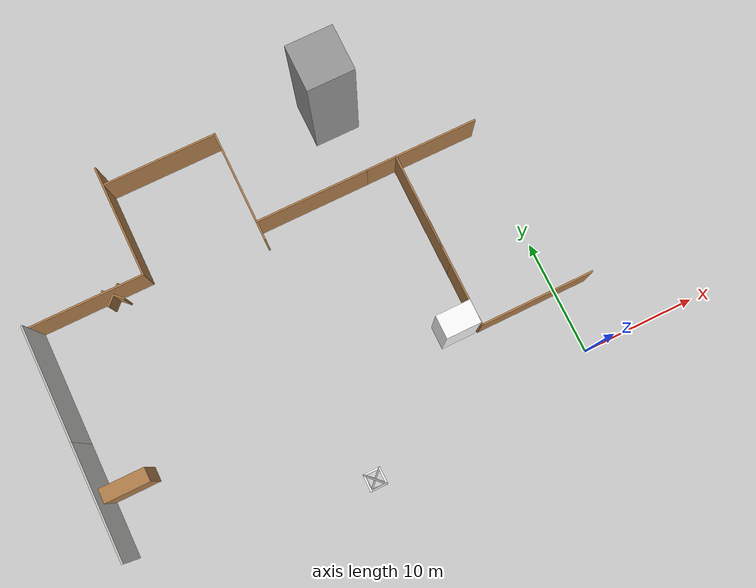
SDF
<sdf version="1.7">
 <world name="default">
  <model name="ground_plane">
   <static>1</static>
   <link name="link">
    <collision name="collision">
     <geometry><plane><normal>0 0 1</normal><size>100 100</size></plane></geometry>
     <surface>
      <contact><collide_bitmask>65535</collide_bitmask></contact>
      <friction><ode><mu>100</mu><mu2>50</mu2></ode></friction>
     </surface>
    </collision>
    <visual name="visual">
     <cast_shadows>0</cast_shadows>
     <geometry><plane><normal>0 0 1</normal><size>100 100</size></plane></geometry>
     <material>
      <script><uri>file://media/materials/scripts/gazebo.material</uri><name>Gazebo/Grey</name></script>
     </material>
    </visual>
   </link>
  </model>
  <model name="Untitled_clone">
   <link name="Wall_0">
    <pose>-0.8775 -4.2975 0 0 -0 0</pose>
    <inertial>
     <mass>1</mass>
     <inertia><ixx>1</ixx><ixy>0</ixy><ixz>0</ixz><iyy>1</iyy><iyz>0</iyz><izz>1</izz></inertia>
    </inertial>
    <visual name="Wall_0_Visual">
     <pose>0 0 1.9 0 -0 0</pose>
     <geometry><box><size>10 0.15 3.8</size></box></geometry>
     <material>
      <script><uri>file://media/materials/scripts/gazebo.material</uri><name>Gazebo/Wood</name></script>
      <ambient>1 1 1 1</ambient>
      <shader type="pixel"><normal_map>__default__</normal_map></shader>
      <diffuse>1 1 1 1</diffuse>
      <specular>0.2 0.2 0.2 1</specular>
      <emissive>0 0 0 1</emissive>
     </material>
     <meta><layer>0</layer></meta>
    </visual>
    <collision name="Wall_0_Collision">
     <pose>0 0 1.9 0 -0 0</pose>
     <geometry><box><size>10 0.15 3.8</size></box></geometry>
     <surface>
      <friction>
       <ode><mu>1</mu><mu2>1</mu2><fdir1>0 0 0</fdir1><slip1>0</slip1><slip2>0</slip2></ode>
       <torsional>
        <coefficient>1</coefficient>
        <patch_radius>0</patch_radius>
        <surface_radius>0</surface_radius>
        <use_patch_radius>1</use_patch_radius>
        <ode><slip>0</slip></ode>
       </torsional>
      </friction>
      <bounce><restitution_coefficient>0</restitution_coefficient><threshold>1e+06</threshold></bounce>
      <contact>
       <collide_without_contact>0</collide_without_contact>
       <collide_without_contact_bitmask>1</collide_without_contact_bitmask>
       <collide_bitmask>1</collide_bitmask>
       <ode>
        <soft_cfm>0</soft_cfm>
        <soft_erp>0.2</soft_erp>
        <kp>1e+13</kp>
        <kd>1</kd>
        <max_vel>0.01</max_vel>
        <min_depth>0</min_depth>
       </ode>
       <bullet>
        <split_impulse>1</split_impulse>
        <split_impulse_penetration_threshold>-0.01</split_impulse_penetration_threshold>
        <soft_cfm>0</soft_cfm>
        <soft_erp>0.2</soft_erp>
        <kp>1e+13</kp>
        <kd>1</kd>
       </bullet>
      </contact>
     </surface>
    </collision>
   </link>
   <static>1</static>
   <pose>-4.14648 25.1875 0 0 -0 0</pose>
  </model>
  <model name="Untitled_clone_clone">
   <link name="Wall_0">
    <pose>-0.8775 -4.2975 0 0 -0 0</pose>
    <inertial>
     <mass>1</mass>
     <inertia><ixx>1</ixx><ixy>0</ixy><ixz>0</ixz><iyy>1</iyy><iyz>0</iyz><izz>1</izz></inertia>
    </inertial>
    <visual name="Wall_0_Visual">
     <pose>0 0 1.9 0 -0 0</pose>
     <geometry><box><size>10 0.15 3.8</size></box></geometry>
     <material>
      <script><uri>file://media/materials/scripts/gazebo.material</uri><name>Gazebo/Wood</name></script>
      <ambient>1 1 1 1</ambient>
      <shader type="pixel"><normal_map>__default__</normal_map></shader>
      <diffuse>1 1 1 1</diffuse>
      <specular>0.2 0.2 0.2 1</specular>
      <emissive>0 0 0 1</emissive>
     </material>
     <meta><layer>0</layer></meta>
    </visual>
    <collision name="Wall_0_Collision">
     <pose>0 0 1.9 0 -0 0</pose>
     <geometry><box><size>10 0.15 3.8</size></box></geometry>
     <surface>
      <friction>
       <ode><mu>1</mu><mu2>1</mu2><fdir1>0 0 0</fdir1><slip1>0</slip1><slip2>0</slip2></ode>
       <torsional>
        <coefficient>1</coefficient>
        <patch_radius>0</patch_radius>
        <surface_radius>0</surface_radius>
        <use_patch_radius>1</use_patch_radius>
        <ode><slip>0</slip></ode>
       </torsional>
      </friction>
      <bounce><restitution_coefficient>0</restitution_coefficient><threshold>1e+06</threshold></bounce>
      <contact>
       <collide_without_contact>0</collide_without_contact>
       <collide_without_contact_bitmask>1</collide_without_contact_bitmask>
       <collide_bitmask>1</collide_bitmask>
       <ode>
        <soft_cfm>0</soft_cfm>
        <soft_erp>0.2</soft_erp>
        <kp>1e+13</kp>
        <kd>1</kd>
        <max_vel>0.01</max_vel>
        <min_depth>0</min_depth>
       </ode>
       <bullet>
        <split_impulse>1</split_impulse>
        <split_impulse_penetration_threshold>-0.01</split_impulse_penetration_threshold>
        <soft_cfm>0</soft_cfm>
        <soft_erp>0.2</soft_erp>
        <kp>1e+13</kp>
        <kd>1</kd>
       </bullet>
      </contact>
     </surface>
    </collision>
   </link>
   <static>1</static>
   <pose>-14.1014 25.1819 0 0 -0 0</pose>
  </model>
  <model name="Untitled_clone_clone_0">
   <link name="Wall_0">
    <pose>-0.8775 -4.2975 0 0 -0 0</pose>
    <inertial>
     <mass>1</mass>
     <inertia><ixx>1</ixx><ixy>0</ixy><ixz>0</ixz><iyy>1</iyy><iyz>0</iyz><izz>1</izz></inertia>
    </inertial>
    <visual name="Wall_0_Visual">
     <pose>0 0 1.9 0 -0 0</pose>
     <geometry><box><size>10 0.15 3.8</size></box></geometry>
     <material>
      <script><uri>file://media/materials/scripts/gazebo.material</uri><name>Gazebo/Wood</name></script>
      <ambient>1 1 1 1</ambient>
      <shader type="pixel"><normal_map>__default__</normal_map></shader>
      <diffuse>1 1 1 1</diffuse>
      <specular>0.2 0.2 0.2 1</specular>
      <emissive>0 0 0 1</emissive>
     </material>
     <meta><layer>0</layer></meta>
    </visual>
    <collision name="Wall_0_Collision">
     <pose>0 0 1.9 0 -0 0</pose>
     <geometry><box><size>10 0.15 3.8</size></box></geometry>
     <surface>
      <friction>
       <ode><mu>1</mu><mu2>1</mu2><fdir1>0 0 0</fdir1><slip1>0</slip1><slip2>0</slip2></ode>
       <torsional>
        <coefficient>1</coefficient>
        <patch_radius>0</patch_radius>
        <surface_radius>0</surface_radius>
        <use_patch_radius>1</use_patch_radius>
        <ode><slip>0</slip></ode>
       </torsional>
      </friction>
      <bounce><restitution_coefficient>0</restitution_coefficient><threshold>1e+06</threshold></bounce>
      <contact>
       <collide_without_contact>0</collide_without_contact>
       <collide_without_contact_bitmask>1</collide_without_contact_bitmask>
       <collide_bitmask>1</collide_bitmask>
       <ode>
        <soft_cfm>0</soft_cfm>
        <soft_erp>0.2</soft_erp>
        <kp>1e+13</kp>
        <kd>1</kd>
        <max_vel>0.01</max_vel>
        <min_depth>0</min_depth>
       </ode>
       <bullet>
        <split_impulse>1</split_impulse>
        <split_impulse_penetration_threshold>-0.01</split_impulse_penetration_threshold>
        <soft_cfm>0</soft_cfm>
        <soft_erp>0.2</soft_erp>
        <kp>1e+13</kp>
        <kd>1</kd>
       </bullet>
      </contact>
     </surface>
    </collision>
   </link>
   <static>1</static>
   <pose>-24.2081 25.1073 0 0 -0 1.5708</pose>
  </model>
  <model name="Untitled_clone_clone_1">
   <link name="Wall_0">
    <pose>-0.8775 -4.2975 0 0 -0 0</pose>
    <inertial>
     <mass>1</mass>
     <inertia><ixx>1</ixx><ixy>0</ixy><ixz>0</ixz><iyy>1</iyy><iyz>0</iyz><izz>1</izz></inertia>
    </inertial>
    <visual name="Wall_0_Visual">
     <pose>0 0 1.9 0 -0 0</pose>
     <geometry><box><size>10 0.15 3.8</size></box></geometry>
     <material>
      <script><uri>file://media/materials/scripts/gazebo.material</uri><name>Gazebo/Wood</name></script>
      <ambient>1 1 1 1</ambient>
      <shader type="pixel"><normal_map>__default__</normal_map></shader>
      <diffuse>1 1 1 1</diffuse>
      <specular>0.2 0.2 0.2 1</specular>
      <emissive>0 0 0 1</emissive>
     </material>
     <meta><layer>0</layer></meta>
    </visual>
    <collision name="Wall_0_Collision">
     <pose>0 0 1.9 0 -0 0</pose>
     <geometry><box><size>10 0.15 3.8</size></box></geometry>
     <surface>
      <friction>
       <ode><mu>1</mu><mu2>1</mu2><fdir1>0 0 0</fdir1><slip1>0</slip1><slip2>0</slip2></ode>
       <torsional>
        <coefficient>1</coefficient>
        <patch_radius>0</patch_radius>
        <surface_radius>0</surface_radius>
        <use_patch_radius>1</use_patch_radius>
        <ode><slip>0</slip></ode>
       </torsional>
      </friction>
      <bounce><restitution_coefficient>0</restitution_coefficient><threshold>1e+06</threshold></bounce>
      <contact>
       <collide_without_contact>0</collide_without_contact>
       <collide_without_contact_bitmask>1</collide_without_contact_bitmask>
       <collide_bitmask>1</collide_bitmask>
       <ode>
        <soft_cfm>0</soft_cfm>
        <soft_erp>0.2</soft_erp>
        <kp>1e+13</kp>
        <kd>1</kd>
        <max_vel>0.01</max_vel>
        <min_depth>0</min_depth>
       </ode>
       <bullet>
        <split_impulse>1</split_impulse>
        <split_impulse_penetration_threshold>-0.01</split_impulse_penetration_threshold>
        <soft_cfm>0</soft_cfm>
        <soft_erp>0.2</soft_erp>
        <kp>1e+13</kp>
        <kd>1</kd>
       </bullet>
      </contact>
     </surface>
    </collision>
   </link>
   <static>1</static>
   <pose>-34.0103 25.18 0 0 -0 0</pose>
  </model>
  <model name="Untitled_clone_clone_0_clone_clone">
   <link name="Wall_0">
    <pose>-0.8775 -4.2975 0 0 -0 0</pose>
    <inertial>
     <mass>1</mass>
     <inertia><ixx>1</ixx><ixy>0</ixy><ixz>0</ixz><iyy>1</iyy><iyz>0</iyz><izz>1</izz></inertia>
    </inertial>
    <visual name="Wall_0_Visual">
     <pose>0 0 1.9 0 -0 0</pose>
     <geometry><box><size>10 0.15 3.8</size></box></geometry>
     <material>
      <script><uri>file://media/materials/scripts/gazebo.material</uri><name>Gazebo/Wood</name></script>
      <ambient>1 1 1 1</ambient>
      <shader type="pixel"><normal_map>__default__</normal_map></shader>
      <diffuse>1 1 1 1</diffuse>
      <specular>0.2 0.2 0.2 1</specular>
      <emissive>0 0 0 1</emissive>
     </material>
     <meta><layer>0</layer></meta>
    </visual>
    <collision name="Wall_0_Collision">
     <pose>0 0 1.9 0 -0 0</pose>
     <geometry><box><size>10 0.15 3.8</size></box></geometry>
     <surface>
      <friction>
       <ode><mu>1</mu><mu2>1</mu2><fdir1>0 0 0</fdir1><slip1>0</slip1><slip2>0</slip2></ode>
       <torsional>
        <coefficient>1</coefficient>
        <patch_radius>0</patch_radius>
        <surface_radius>0</surface_radius>
        <use_patch_radius>1</use_patch_radius>
        <ode><slip>0</slip></ode>
       </torsional>
      </friction>
      <bounce><restitution_coefficient>0</restitution_coefficient><threshold>1e+06</threshold></bounce>
      <contact>
       <collide_without_contact>0</collide_without_contact>
       <collide_without_contact_bitmask>1</collide_without_contact_bitmask>
       <collide_bitmask>1</collide_bitmask>
       <ode>
        <soft_cfm>0</soft_cfm>
        <soft_erp>0.2</soft_erp>
        <kp>1e+13</kp>
        <kd>1</kd>
        <max_vel>0.01</max_vel>
        <min_depth>0</min_depth>
       </ode>
       <bullet>
        <split_impulse>1</split_impulse>
        <split_impulse_penetration_threshold>-0.01</split_impulse_penetration_threshold>
        <soft_cfm>0</soft_cfm>
        <soft_erp>0.2</soft_erp>
        <kp>1e+13</kp>
        <kd>1</kd>
       </bullet>
      </contact>
     </surface>
    </collision>
   </link>
   <static>1</static>
   <pose>-24.0116 33.454 0 0 -0 0</pose>
  </model>
  <model name="Untitled_clone_clone_0_clone_0">
   <link name="Wall_0">
    <pose>-0.8775 -4.2975 0 0 -0 0</pose>
    <inertial>
     <mass>1</mass>
     <inertia><ixx>1</ixx><ixy>0</ixy><ixz>0</ixz><iyy>1</iyy><iyz>0</iyz><izz>1</izz></inertia>
    </inertial>
    <visual name="Wall_0_Visual">
     <pose>0 0 1.9 0 -0 0</pose>
     <geometry><box><size>10 0.15 3.8</size></box></geometry>
     <material>
      <script><uri>file://media/materials/scripts/gazebo.material</uri><name>Gazebo/Wood</name></script>
      <ambient>1 1 1 1</ambient>
      <shader type="pixel"><normal_map>__default__</normal_map></shader>
      <diffuse>1 1 1 1</diffuse>
      <specular>0.2 0.2 0.2 1</specular>
      <emissive>0 0 0 1</emissive>
     </material>
     <meta><layer>0</layer></meta>
    </visual>
    <collision name="Wall_0_Collision">
     <pose>0 0 1.9 0 -0 0</pose>
     <geometry><box><size>10 0.15 3.8</size></box></geometry>
     <surface>
      <friction>
       <ode><mu>1</mu><mu2>1</mu2><fdir1>0 0 0</fdir1><slip1>0</slip1><slip2>0</slip2></ode>
       <torsional>
        <coefficient>1</coefficient>
        <patch_radius>0</patch_radius>
        <surface_radius>0</surface_radius>
        <use_patch_radius>1</use_patch_radius>
        <ode><slip>0</slip></ode>
       </torsional>
      </friction>
      <bounce><restitution_coefficient>0</restitution_coefficient><threshold>1e+06</threshold></bounce>
      <contact>
       <collide_without_contact>0</collide_without_contact>
       <collide_without_contact_bitmask>1</collide_without_contact_bitmask>
       <collide_bitmask>1</collide_bitmask>
       <ode>
        <soft_cfm>0</soft_cfm>
        <soft_erp>0.2</soft_erp>
        <kp>1e+13</kp>
        <kd>1</kd>
        <max_vel>0.01</max_vel>
        <min_depth>0</min_depth>
       </ode>
       <bullet>
        <split_impulse>1</split_impulse>
        <split_impulse_penetration_threshold>-0.01</split_impulse_penetration_threshold>
        <soft_cfm>0</soft_cfm>
        <soft_erp>0.2</soft_erp>
        <kp>1e+13</kp>
        <kd>1</kd>
       </bullet>
      </contact>
     </surface>
    </collision>
   </link>
   <static>1</static>
   <pose>-34.2183 26.6866 0 0 -0 1.5708</pose>
  </model>
  <model name="Untitled_0_clone">
   <link name="Wall_2">
    <pose>-0.3075 -1.8625 0 0 0 -1.5708</pose>
    <inertial>
     <mass>1</mass>
     <inertia><ixx>1</ixx><ixy>0</ixy><ixz>0</ixz><iyy>1</iyy><iyz>0</iyz><izz>1</izz></inertia>
    </inertial>
    <visual name="Wall_2_Visual">
     <pose>0 0 2.7 0 -0 0</pose>
     <geometry><box><size>10 0.15 5.4</size></box></geometry>
     <material>
      <script><uri>file://media/materials/scripts/gazebo.material</uri><name>Gazebo/CeilingTiled</name></script>
      <ambient>1 1 1 1</ambient>
      <shader type="pixel"><normal_map>__default__</normal_map></shader>
      <diffuse>1 1 1 1</diffuse>
      <specular>0 0 0 1</specular>
      <emissive>0 0 0 1</emissive>
     </material>
     <meta><layer>0</layer></meta>
    </visual>
    <collision name="Wall_2_Collision">
     <pose>0 0 2.7 0 -0 0</pose>
     <geometry><box><size>10 0.15 5.4</size></box></geometry>
     <surface>
      <friction>
       <ode><mu>1</mu><mu2>1</mu2><fdir1>0 0 0</fdir1><slip1>0</slip1><slip2>0</slip2></ode>
       <torsional>
        <coefficient>1</coefficient>
        <patch_radius>0</patch_radius>
        <surface_radius>0</surface_radius>
        <use_patch_radius>1</use_patch_radius>
        <ode><slip>0</slip></ode>
       </torsional>
      </friction>
      <bounce><restitution_coefficient>0</restitution_coefficient><threshold>1e+06</threshold></bounce>
      <contact>
       <collide_without_contact>0</collide_without_contact>
       <collide_without_contact_bitmask>1</collide_without_contact_bitmask>
       <collide_bitmask>1</collide_bitmask>
       <ode>
        <soft_cfm>0</soft_cfm>
        <soft_erp>0.2</soft_erp>
        <kp>1e+13</kp>
        <kd>1</kd>
        <max_vel>0.01</max_vel>
        <min_depth>0</min_depth>
       </ode>
       <bullet>
        <split_impulse>1</split_impulse>
        <split_impulse_penetration_threshold>-0.01</split_impulse_penetration_threshold>
        <soft_cfm>0</soft_cfm>
        <soft_erp>0.2</soft_erp>
        <kp>1e+13</kp>
        <kd>1</kd>
       </bullet>
      </contact>
     </surface>
    </collision>
   </link>
   <static>1</static>
   <pose>-39.5223 17.6877 0 0 -0 0</pose>
  </model>
  <model name="Untitled_0_clone_0">
   <link name="Wall_2">
    <pose>-0.3075 -1.8625 0 0 0 -1.5708</pose>
    <inertial>
     <mass>1</mass>
     <inertia><ixx>1</ixx><ixy>0</ixy><ixz>0</ixz><iyy>1</iyy><iyz>0</iyz><izz>1</izz></inertia>
    </inertial>
    <visual name="Wall_2_Visual">
     <pose>0 0 2.7 0 -0 0</pose>
     <geometry><box><size>10 0.15 5.4</size></box></geometry>
     <material>
      <script><uri>file://media/materials/scripts/gazebo.material</uri><name>Gazebo/CeilingTiled</name></script>
      <ambient>1 1 1 1</ambient>
      <shader type="pixel"><normal_map>__default__</normal_map></shader>
      <diffuse>1 1 1 1</diffuse>
      <specular>0 0 0 1</specular>
      <emissive>0 0 0 1</emissive>
     </material>
     <meta><layer>0</layer></meta>
    </visual>
    <collision name="Wall_2_Collision">
     <pose>0 0 2.7 0 -0 0</pose>
     <geometry><box><size>10 0.15 5.4</size></box></geometry>
     <surface>
      <friction>
       <ode><mu>1</mu><mu2>1</mu2><fdir1>0 0 0</fdir1><slip1>0</slip1><slip2>0</slip2></ode>
       <torsional>
        <coefficient>1</coefficient>
        <patch_radius>0</patch_radius>
        <surface_radius>0</surface_radius>
        <use_patch_radius>1</use_patch_radius>
        <ode><slip>0</slip></ode>
       </torsional>
      </friction>
      <bounce><restitution_coefficient>0</restitution_coefficient><threshold>1e+06</threshold></bounce>
      <contact>
       <collide_without_contact>0</collide_without_contact>
       <collide_without_contact_bitmask>1</collide_without_contact_bitmask>
       <collide_bitmask>1</collide_bitmask>
       <ode>
        <soft_cfm>0</soft_cfm>
        <soft_erp>0.2</soft_erp>
        <kp>1e+13</kp>
        <kd>1</kd>
        <max_vel>0.01</max_vel>
        <min_depth>0</min_depth>
       </ode>
       <bullet>
        <split_impulse>1</split_impulse>
        <split_impulse_penetration_threshold>-0.01</split_impulse_penetration_threshold>
        <soft_cfm>0</soft_cfm>
        <soft_erp>0.2</soft_erp>
        <kp>1e+13</kp>
        <kd>1</kd>
       </bullet>
      </contact>
     </surface>
    </collision>
   </link>
   <static>1</static>
   <pose>-39.5231 7.69922 0 0 -0 0</pose>
  </model>
  <model name="unit_box">
   <link name="link">
    <inertial>
     <mass>1</mass>
     <inertia>
      <ixx>0.166667</ixx>
      <ixy>0</ixy>
      <ixz>0</ixz>
      <iyy>0.166667</iyy>
      <iyz>0</iyz>
      <izz>0.166667</izz>
     </inertia>
    </inertial>
    <visual name="visual">
     <geometry><box><size>4 4 12</size></box></geometry>
     <material>
      <script><name>Gazebo/Grey</name><uri>file://media/materials/scripts/gazebo.material</uri></script>
      <shader type="pixel"><normal_map>__default__</normal_map></shader>
      <ambient>0.3 0.3 0.3 1</ambient>
      <diffuse>0.7 0.7 0.7 1</diffuse>
      <specular>0.01 0.01 0.01 1</specular>
      <emissive>0 0 0 1</emissive>
     </material>
     <pose>0 0 6 0 -0 0</pose>
    </visual>
    <collision name="collision">
     <pose>0 0 6 0 -0 0</pose>
     <geometry><box><size>4 4 12</size></box></geometry>
     <surface>
      <friction>
       <ode><mu>1</mu><mu2>1</mu2><fdir1>0 0 0</fdir1><slip1>0</slip1><slip2>0</slip2></ode>
       <torsional>
        <coefficient>1</coefficient>
        <patch_radius>0</patch_radius>
        <surface_radius>0</surface_radius>
        <use_patch_radius>1</use_patch_radius>
        <ode><slip>0</slip></ode>
       </torsional>
      </friction>
      <bounce><restitution_coefficient>0</restitution_coefficient><threshold>1e+06</threshold></bounce>
      <contact>
       <collide_without_contact>0</collide_without_contact>
       <collide_without_contact_bitmask>1</collide_without_contact_bitmask>
       <collide_bitmask>1</collide_bitmask>
       <ode>
        <soft_cfm>0</soft_cfm>
        <soft_erp>0.2</soft_erp>
        <kp>1e+13</kp>
        <kd>1</kd>
        <max_vel>0.01</max_vel>
        <min_depth>0</min_depth>
       </ode>
       <bullet>
        <split_impulse>1</split_impulse>
        <split_impulse_penetration_threshold>-0.01</split_impulse_penetration_threshold>
        <soft_cfm>0</soft_cfm>
        <soft_erp>0.2</soft_erp>
        <kp>1e+13</kp>
        <kd>1</kd>
       </bullet>
      </contact>
     </surface>
    </collision>
   </link>
   <static>0</static>
   <pose>-10.4039 27.8438 -0 0 -0 0</pose>
  </model>
  <model name="Untitled_clone_clone_0_clone_clone_0">
   <link name="Wall_0">
    <pose>-0.877501 -4.2975 0 0 -0 0</pose>
    <inertial>
     <mass>1</mass>
     <inertia><ixx>1</ixx><ixy>0</ixy><ixz>0</ixz><iyy>1</iyy><iyz>0</iyz><izz>1</izz></inertia>
    </inertial>
    <visual name="Wall_0_Visual">
     <pose>0 0 1.9 0 -0 0</pose>
     <geometry><box><size>4 1.25 3.8</size></box></geometry>
     <material>
      <script><uri>file://media/materials/scripts/gazebo.material</uri><name>Gazebo/Wood</name></script>
      <ambient>1 1 1 1</ambient>
      <shader type="pixel"><normal_map>__default__</normal_map></shader>
      <diffuse>1 1 1 1</diffuse>
      <specular>0.2 0.2 0.2 1</specular>
      <emissive>0 0 0 1</emissive>
     </material>
     <meta><layer>0</layer></meta>
    </visual>
    <collision name="Wall_0_Collision">
     <pose>0 0 1.9 0 -0 0</pose>
     <geometry><box><size>4 1.25 3.8</size></box></geometry>
     <surface>
      <friction>
       <ode><mu>1</mu><mu2>1</mu2><fdir1>0 0 0</fdir1><slip1>0</slip1><slip2>0</slip2></ode>
       <torsional>
        <coefficient>1</coefficient>
        <patch_radius>0</patch_radius>
        <surface_radius>0</surface_radius>
        <use_patch_radius>1</use_patch_radius>
        <ode><slip>0</slip></ode>
       </torsional>
      </friction>
      <bounce><restitution_coefficient>0</restitution_coefficient><threshold>1e+06</threshold></bounce>
      <contact>
       <collide_without_contact>0</collide_without_contact>
       <collide_without_contact_bitmask>1</collide_without_contact_bitmask>
       <collide_bitmask>1</collide_bitmask>
       <ode>
        <soft_cfm>0</soft_cfm>
        <soft_erp>0.2</soft_erp>
        <kp>1e+13</kp>
        <kd>1</kd>
        <max_vel>0.01</max_vel>
        <min_depth>0</min_depth>
       </ode>
       <bullet>
        <split_impulse>1</split_impulse>
        <split_impulse_penetration_threshold>-0.01</split_impulse_penetration_threshold>
        <soft_cfm>0</soft_cfm>
        <soft_erp>0.2</soft_erp>
        <kp>1e+13</kp>
        <kd>1</kd>
       </bullet>
      </contact>
     </surface>
    </collision>
   </link>
   <static>1</static>
   <pose>-36.9891 10.5591 0 0 -0 0</pose>
  </model>
  <model name="Untitled_clone_clone_0_clone_1">
   <link name="Wall_0">
    <pose>-0.8775 -4.2975 0 0 -0 0</pose>
    <inertial>
     <mass>1</mass>
     <inertia><ixx>1</ixx><ixy>0</ixy><ixz>0</ixz><iyy>1</iyy><iyz>0</iyz><izz>1</izz></inertia>
    </inertial>
    <visual name="Wall_0_Visual">
     <pose>0 0 1.9 0 -0 0</pose>
     <geometry><box><size>10 0.15 3.8</size></box></geometry>
     <material>
      <script><uri>file://media/materials/scripts/gazebo.material</uri><name>Gazebo/Wood</name></script>
      <ambient>1 1 1 1</ambient>
      <shader type="pixel"><normal_map>__default__</normal_map></shader>
      <diffuse>1 1 1 1</diffuse>
      <specular>0.2 0.2 0.2 1</specular>
      <emissive>0 0 0 1</emissive>
     </material>
     <meta><layer>0</layer></meta>
    </visual>
    <collision name="Wall_0_Collision">
     <pose>0 0 1.9 0 -0 0</pose>
     <geometry><box><size>10 0.15 3.8</size></box></geometry>
     <surface>
      <friction>
       <ode><mu>1</mu><mu2>1</mu2><fdir1>0 0 0</fdir1><slip1>0</slip1><slip2>0</slip2></ode>
       <torsional>
        <coefficient>1</coefficient>
        <patch_radius>0</patch_radius>
        <surface_radius>0</surface_radius>
        <use_patch_radius>1</use_patch_radius>
        <ode><slip>0</slip></ode>
       </torsional>
      </friction>
      <bounce><restitution_coefficient>0</restitution_coefficient><threshold>1e+06</threshold></bounce>
      <contact>
       <collide_without_contact>0</collide_without_contact>
       <collide_without_contact_bitmask>1</collide_without_contact_bitmask>
       <collide_bitmask>1</collide_bitmask>
       <ode>
        <soft_cfm>0</soft_cfm>
        <soft_erp>0.2</soft_erp>
        <kp>1e+13</kp>
        <kd>1</kd>
        <max_vel>0.01</max_vel>
        <min_depth>0</min_depth>
       </ode>
       <bullet>
        <split_impulse>1</split_impulse>
        <split_impulse_penetration_threshold>-0.01</split_impulse_penetration_threshold>
        <soft_cfm>0</soft_cfm>
        <soft_erp>0.2</soft_erp>
        <kp>1e+13</kp>
        <kd>1</kd>
       </bullet>
      </contact>
     </surface>
    </collision>
   </link>
   <static>1</static>
   <pose>-11.6179 16.7507 0 0 -0 1.5708</pose>
  </model>
  <model name="Untitled_clone_clone_0_clone_2">
   <link name="Wall_0">
    <pose>-0.8775 -4.2975 0 0 -0 0</pose>
    <inertial>
     <mass>1</mass>
     <inertia><ixx>1</ixx><ixy>0</ixy><ixz>0</ixz><iyy>1</iyy><iyz>0</iyz><izz>1</izz></inertia>
    </inertial>
    <visual name="Wall_0_Visual">
     <pose>0 0 1.9 0 -0 0</pose>
     <geometry><box><size>10 0.15 3.8</size></box></geometry>
     <material>
      <script><uri>file://media/materials/scripts/gazebo.material</uri><name>Gazebo/Wood</name></script>
      <ambient>1 1 1 1</ambient>
      <shader type="pixel"><normal_map>__default__</normal_map></shader>
      <diffuse>1 1 1 1</diffuse>
      <specular>0.2 0.2 0.2 1</specular>
      <emissive>0 0 0 1</emissive>
     </material>
     <meta><layer>0</layer></meta>
    </visual>
    <collision name="Wall_0_Collision">
     <pose>0 0 1.9 0 -0 0</pose>
     <geometry><box><size>10 0.15 3.8</size></box></geometry>
     <surface>
      <friction>
       <ode><mu>1</mu><mu2>1</mu2><fdir1>0 0 0</fdir1><slip1>0</slip1><slip2>0</slip2></ode>
       <torsional>
        <coefficient>1</coefficient>
        <patch_radius>0</patch_radius>
        <surface_radius>0</surface_radius>
        <use_patch_radius>1</use_patch_radius>
        <ode><slip>0</slip></ode>
       </torsional>
      </friction>
      <bounce><restitution_coefficient>0</restitution_coefficient><threshold>1e+06</threshold></bounce>
      <contact>
       <collide_without_contact>0</collide_without_contact>
       <collide_without_contact_bitmask>1</collide_without_contact_bitmask>
       <collide_bitmask>1</collide_bitmask>
       <ode>
        <soft_cfm>0</soft_cfm>
        <soft_erp>0.2</soft_erp>
        <kp>1e+13</kp>
        <kd>1</kd>
        <max_vel>0.01</max_vel>
        <min_depth>0</min_depth>
       </ode>
       <bullet>
        <split_impulse>1</split_impulse>
        <split_impulse_penetration_threshold>-0.01</split_impulse_penetration_threshold>
        <soft_cfm>0</soft_cfm>
        <soft_erp>0.2</soft_erp>
        <kp>1e+13</kp>
        <kd>1</kd>
       </bullet>
      </contact>
     </surface>
    </collision>
   </link>
   <static>1</static>
   <pose>-11.6082 11.1825 0 0 -0 1.5708</pose>
  </model>
  <model name="Untitled_clone_clone_0_clone_clone_1">
   <link name="Wall_0">
    <pose>-0.8775 -4.2975 0 0 -0 0</pose>
    <inertial>
     <mass>1</mass>
     <inertia><ixx>1</ixx><ixy>0</ixy><ixz>0</ixz><iyy>1</iyy><iyz>0</iyz><izz>1</izz></inertia>
    </inertial>
    <visual name="Wall_0_Visual">
     <pose>0 0 1.9 0 -0 0</pose>
     <geometry><box><size>10 0.15 3.8</size></box></geometry>
     <material>
      <script><uri>file://media/materials/scripts/gazebo.material</uri><name>Gazebo/Wood</name></script>
      <ambient>1 1 1 1</ambient>
      <shader type="pixel"><normal_map>__default__</normal_map></shader>
      <diffuse>1 1 1 1</diffuse>
      <specular>0.2 0.2 0.2 1</specular>
      <emissive>0 0 0 1</emissive>
     </material>
     <meta><layer>0</layer></meta>
    </visual>
    <collision name="Wall_0_Collision">
     <pose>0 0 1.9 0 -0 0</pose>
     <geometry><box><size>10 0.15 3.8</size></box></geometry>
     <surface>
      <friction>
       <ode><mu>1</mu><mu2>1</mu2><fdir1>0 0 0</fdir1><slip1>0</slip1><slip2>0</slip2></ode>
       <torsional>
        <coefficient>1</coefficient>
        <patch_radius>0</patch_radius>
        <surface_radius>0</surface_radius>
        <use_patch_radius>1</use_patch_radius>
        <ode><slip>0</slip></ode>
       </torsional>
      </friction>
      <bounce><restitution_coefficient>0</restitution_coefficient><threshold>1e+06</threshold></bounce>
      <contact>
       <collide_without_contact>0</collide_without_contact>
       <collide_without_contact_bitmask>1</collide_without_contact_bitmask>
       <collide_bitmask>1</collide_bitmask>
       <ode>
        <soft_cfm>0</soft_cfm>
        <soft_erp>0.2</soft_erp>
        <kp>1e+13</kp>
        <kd>1</kd>
        <max_vel>0.01</max_vel>
        <min_depth>0</min_depth>
       </ode>
       <bullet>
        <split_impulse>1</split_impulse>
        <split_impulse_penetration_threshold>-0.01</split_impulse_penetration_threshold>
        <soft_cfm>0</soft_cfm>
        <soft_erp>0.2</soft_erp>
        <kp>1e+13</kp>
        <kd>1</kd>
       </bullet>
      </contact>
     </surface>
    </collision>
   </link>
   <static>1</static>
   <pose>-1.46719 9.65596 0 0 -0 0</pose>
  </model>
  <model name="Untitled_clone_clone_0_clone_clone_0_clone_0_clone_0_clone_0_clone">
   <link name="Wall_0">
    <pose>-0.877501 -4.2975 0 0 -0 0</pose>
    <inertial>
     <mass>1</mass>
     <inertia><ixx>1</ixx><ixy>0</ixy><ixz>0</ixz><iyy>1</iyy><iyz>0</iyz><izz>1</izz></inertia>
    </inertial>
    <visual name="Wall_0_Visual">
     <pose>0 0 3 0 -0 0</pose>
     <geometry><box><size>3 2 6</size></box></geometry>
     <material>
      <script><uri>file://media/materials/scripts/gazebo.material</uri><name>Gazebo/CoM</name></script>
      <ambient>1 1 1 1</ambient>
      <shader type="pixel"><normal_map>__default__</normal_map></shader>
      <diffuse>1 1 1 1</diffuse>
      <specular>0.2 0.2 0.2 1</specular>
      <emissive>0 0 0 1</emissive>
     </material>
     <meta><layer>0</layer></meta>
    </visual>
    <collision name="Wall_0_Collision">
     <pose>0 0 3 0 -0 0</pose>
     <geometry><box><size>3 2 6</size></box></geometry>
     <surface>
      <friction>
       <ode><mu>1</mu><mu2>1</mu2><fdir1>0 0 0</fdir1><slip1>0</slip1><slip2>0</slip2></ode>
       <torsional>
        <coefficient>1</coefficient>
        <patch_radius>0</patch_radius>
        <surface_radius>0</surface_radius>
        <use_patch_radius>1</use_patch_radius>
        <ode><slip>0</slip></ode>
       </torsional>
      </friction>
      <bounce><restitution_coefficient>0</restitution_coefficient><threshold>1e+06</threshold></bounce>
      <contact>
       <collide_without_contact>0</collide_without_contact>
       <collide_without_contact_bitmask>1</collide_without_contact_bitmask>
       <collide_bitmask>1</collide_bitmask>
       <ode>
        <soft_cfm>0</soft_cfm>
        <soft_erp>0.2</soft_erp>
        <kp>1e+13</kp>
        <kd>1</kd>
        <max_vel>0.01</max_vel>
        <min_depth>0</min_depth>
       </ode>
       <bullet>
        <split_impulse>1</split_impulse>
        <split_impulse_penetration_threshold>-0.01</split_impulse_penetration_threshold>
        <soft_cfm>0</soft_cfm>
        <soft_erp>0.2</soft_erp>
        <kp>1e+13</kp>
        <kd>1</kd>
       </bullet>
      </contact>
     </surface>
    </collision>
   </link>
   <static>1</static>
   <pose>-8.23097 10.6476 0 0 -0 0</pose>
  </model>
  <model name="Untitled_2_clone">
   <link name="Wall_10">
    <pose>-1.56423 -2.94394 0 0 -0 0.785398</pose>
    <inertial>
     <mass>1</mass>
     <inertia><ixx>1</ixx><ixy>0</ixy><ixz>0</ixz><iyy>1</iyy><iyz>0</iyz><izz>1</izz></inertia>
    </inertial>
    <visual name="Wall_10_Visual">
     <pose>0 0 1.25 0 -0 0</pose>
     <geometry><box><size>2.05919 0.15 2.5</size></box></geometry>
     <material>
      <script><uri>file://media/materials/scripts/gazebo.material</uri><name>Gazebo/Wood</name></script>
      <ambient>1 1 1 1</ambient>
      <shader type="pixel"><normal_map>__default__</normal_map></shader>
      <diffuse>1 1 1 1</diffuse>
      <specular>0.2 0.2 0.2 1</specular>
      <emissive>0 0 0 1</emissive>
     </material>
     <meta><layer>0</layer></meta>
    </visual>
    <collision name="Wall_10_Collision">
     <pose>0 0 1.25 0 -0 0</pose>
     <geometry><box><size>2.05919 0.15 2.5</size></box></geometry>
     <surface>
      <friction>
       <ode><mu>1</mu><mu2>1</mu2><fdir1>0 0 0</fdir1><slip1>0</slip1><slip2>0</slip2></ode>
       <torsional>
        <coefficient>1</coefficient>
        <patch_radius>0</patch_radius>
        <surface_radius>0</surface_radius>
        <use_patch_radius>1</use_patch_radius>
        <ode><slip>0</slip></ode>
       </torsional>
      </friction>
      <bounce><restitution_coefficient>0</restitution_coefficient><threshold>1e+06</threshold></bounce>
      <contact>
       <collide_without_contact>0</collide_without_contact>
       <collide_without_contact_bitmask>1</collide_without_contact_bitmask>
       <collide_bitmask>1</collide_bitmask>
       <ode>
        <soft_cfm>0</soft_cfm>
        <soft_erp>0.2</soft_erp>
        <kp>1e+13</kp>
        <kd>1</kd>
        <max_vel>0.01</max_vel>
        <min_depth>0</min_depth>
       </ode>
       <bullet>
        <split_impulse>1</split_impulse>
        <split_impulse_penetration_threshold>-0.01</split_impulse_penetration_threshold>
        <soft_cfm>0</soft_cfm>
        <soft_erp>0.2</soft_erp>
        <kp>1e+13</kp>
        <kd>1</kd>
       </bullet>
      </contact>
     </surface>
    </collision>
   </link>
   <link name="Wall_8">
    <pose>-1.55851 -2.94394 0 0 0 -0.785398</pose>
    <inertial>
     <mass>1</mass>
     <inertia><ixx>1</ixx><ixy>0</ixy><ixz>0</ixz><iyy>1</iyy><iyz>0</iyz><izz>1</izz></inertia>
    </inertial>
    <visual name="Wall_8_Visual">
     <pose>0 0 1.25 0 -0 0</pose>
     <geometry><box><size>2.05919 0.15 2.5</size></box></geometry>
     <material>
      <script><uri>file://media/materials/scripts/gazebo.material</uri><name>Gazebo/Wood</name></script>
      <ambient>1 1 1 1</ambient>
      <shader type="pixel"><normal_map>__default__</normal_map></shader>
      <diffuse>1 1 1 1</diffuse>
      <specular>0.2 0.2 0.2 1</specular>
      <emissive>0 0 0 1</emissive>
     </material>
     <meta><layer>0</layer></meta>
    </visual>
    <collision name="Wall_8_Collision">
     <pose>0 0 1.25 0 -0 0</pose>
     <geometry><box><size>2.05919 0.15 2.5</size></box></geometry>
     <surface>
      <friction>
       <ode><mu>1</mu><mu2>1</mu2><fdir1>0 0 0</fdir1><slip1>0</slip1><slip2>0</slip2></ode>
       <torsional>
        <coefficient>1</coefficient>
        <patch_radius>0</patch_radius>
        <surface_radius>0</surface_radius>
        <use_patch_radius>1</use_patch_radius>
        <ode><slip>0</slip></ode>
       </torsional>
      </friction>
      <bounce><restitution_coefficient>0</restitution_coefficient><threshold>1e+06</threshold></bounce>
      <contact>
       <collide_without_contact>0</collide_without_contact>
       <collide_without_contact_bitmask>1</collide_without_contact_bitmask>
       <collide_bitmask>1</collide_bitmask>
       <ode>
        <soft_cfm>0</soft_cfm>
        <soft_erp>0.2</soft_erp>
        <kp>1e+13</kp>
        <kd>1</kd>
        <max_vel>0.01</max_vel>
        <min_depth>0</min_depth>
       </ode>
       <bullet>
        <split_impulse>1</split_impulse>
        <split_impulse_penetration_threshold>-0.01</split_impulse_penetration_threshold>
        <soft_cfm>0</soft_cfm>
        <soft_erp>0.2</soft_erp>
        <kp>1e+13</kp>
        <kd>1</kd>
       </bullet>
      </contact>
     </surface>
    </collision>
   </link>
   <static>1</static>
   <pose>-31.3864 23.7167 0 0 -0 0</pose>
  </model>
  <model name="Untitled_1_clone_3_clone_10">
   <link name="Wall_10">
    <pose>4.92197 -3.43197 0 0 -0 1.5708</pose>
    <inertial>
     <mass>1</mass>
     <inertia><ixx>1</ixx><ixy>0</ixy><ixz>0</ixz><iyy>1</iyy><iyz>0</iyz><izz>1</izz></inertia>
    </inertial>
    <visual name="Wall_10_Visual">
     <pose>0 0 1.25 0 -0 0</pose>
     <geometry><box><size>1.5 0.15 2.5</size></box></geometry>
     <material>
      <script><uri>file://media/materials/scripts/gazebo.material</uri><name>Gazebo/CoM</name></script>
      <ambient>1 1 1 1</ambient>
      <shader type="pixel"><normal_map>__default__</normal_map></shader>
      <diffuse>1 1 1 1</diffuse>
      <specular>0 0 0 1</specular>
      <emissive>0 0 0 1</emissive>
     </material>
     <meta><layer>0</layer></meta>
    </visual>
    <collision name="Wall_10_Collision">
     <pose>0 0 1.25 0 -0 0</pose>
     <geometry><box><size>1.5 0.15 2.5</size></box></geometry>
     <surface>
      <friction>
       <ode><mu>1</mu><mu2>1</mu2><fdir1>0 0 0</fdir1><slip1>0</slip1><slip2>0</slip2></ode>
       <torsional>
        <coefficient>1</coefficient>
        <patch_radius>0</patch_radius>
        <surface_radius>0</surface_radius>
        <use_patch_radius>1</use_patch_radius>
        <ode><slip>0</slip></ode>
       </torsional>
      </friction>
      <bounce><restitution_coefficient>0</restitution_coefficient><threshold>1e+06</threshold></bounce>
      <contact>
       <collide_without_contact>0</collide_without_contact>
       <collide_without_contact_bitmask>1</collide_without_contact_bitmask>
       <collide_bitmask>1</collide_bitmask>
       <ode>
        <soft_cfm>0</soft_cfm>
        <soft_erp>0.2</soft_erp>
        <kp>1e+13</kp>
        <kd>1</kd>
        <max_vel>0.01</max_vel>
        <min_depth>0</min_depth>
       </ode>
       <bullet>
        <split_impulse>1</split_impulse>
        <split_impulse_penetration_threshold>-0.01</split_impulse_penetration_threshold>
        <soft_cfm>0</soft_cfm>
        <soft_erp>0.2</soft_erp>
        <kp>1e+13</kp>
        <kd>1</kd>
       </bullet>
      </contact>
     </surface>
    </collision>
   </link>
   <link name="Wall_11">
    <pose>5.59697 -3.43197 0 0 0 -0.785398</pose>
    <visual name="Wall_11_Visual">
     <pose>0 0 1.25 0 -0 0</pose>
     <geometry><box><size>2.05919 0.15 2.5</size></box></geometry>
     <material>
      <script><uri>file://media/materials/scripts/gazebo.material</uri><name>Gazebo/Grey</name></script>
      <ambient>1 1 1 1</ambient>
      <shader type="pixel"/>
     </material>
     <meta><layer>0</layer></meta>
    </visual>
    <collision name="Wall_11_Collision">
     <pose>0 0 1.25 0 -0 0</pose>
     <geometry><box><size>2.05919 0.15 2.5</size></box></geometry>
     <surface>
      <friction>
       <ode><mu>1</mu><mu2>1</mu2><fdir1>0 0 0</fdir1><slip1>0</slip1><slip2>0</slip2></ode>
       <torsional>
        <coefficient>1</coefficient>
        <patch_radius>0</patch_radius>
        <surface_radius>0</surface_radius>
        <use_patch_radius>1</use_patch_radius>
        <ode><slip>0</slip></ode>
       </torsional>
      </friction>
      <bounce><restitution_coefficient>0</restitution_coefficient><threshold>1e+06</threshold></bounce>
      <contact>
       <collide_without_contact>0</collide_without_contact>
       <collide_without_contact_bitmask>1</collide_without_contact_bitmask>
       <collide_bitmask>1</collide_bitmask>
       <ode>
        <soft_cfm>0</soft_cfm>
        <soft_erp>0.2</soft_erp>
        <kp>1e+13</kp>
        <kd>1</kd>
        <max_vel>0.01</max_vel>
        <min_depth>0</min_depth>
       </ode>
       <bullet>
        <split_impulse>1</split_impulse>
        <split_impulse_penetration_threshold>-0.01</split_impulse_penetration_threshold>
        <soft_cfm>0</soft_cfm>
        <soft_erp>0.2</soft_erp>
        <kp>1e+13</kp>
        <kd>1</kd>
       </bullet>
      </contact>
     </surface>
    </collision>
   </link>
   <link name="Wall_13">
    <pose>5.59697 -3.43197 0 0 -0 0.785398</pose>
    <visual name="Wall_13_Visual">
     <pose>0 0 1.25 0 -0 0</pose>
     <geometry><box><size>2.05919 0.15 2.5</size></box></geometry>
     <material>
      <script><uri>file://media/materials/scripts/gazebo.material</uri><name>Gazebo/Grey</name></script>
      <ambient>1 1 1 1</ambient>
      <shader type="pixel"/>
     </material>
     <meta><layer>0</layer></meta>
    </visual>
    <collision name="Wall_13_Collision">
     <pose>0 0 1.25 0 -0 0</pose>
     <geometry><box><size>2.05919 0.15 2.5</size></box></geometry>
     <surface>
      <friction>
       <ode><mu>1</mu><mu2>1</mu2><fdir1>0 0 0</fdir1><slip1>0</slip1><slip2>0</slip2></ode>
       <torsional>
        <coefficient>1</coefficient>
        <patch_radius>0</patch_radius>
        <surface_radius>0</surface_radius>
        <use_patch_radius>1</use_patch_radius>
        <ode><slip>0</slip></ode>
       </torsional>
      </friction>
      <bounce><restitution_coefficient>0</restitution_coefficient><threshold>1e+06</threshold></bounce>
      <contact>
       <collide_without_contact>0</collide_without_contact>
       <collide_without_contact_bitmask>1</collide_without_contact_bitmask>
       <collide_bitmask>1</collide_bitmask>
       <ode>
        <soft_cfm>0</soft_cfm>
        <soft_erp>0.2</soft_erp>
        <kp>1e+13</kp>
        <kd>1</kd>
        <max_vel>0.01</max_vel>
        <min_depth>0</min_depth>
       </ode>
       <bullet>
        <split_impulse>1</split_impulse>
        <split_impulse_penetration_threshold>-0.01</split_impulse_penetration_threshold>
        <soft_cfm>0</soft_cfm>
        <soft_erp>0.2</soft_erp>
        <kp>1e+13</kp>
        <kd>1</kd>
       </bullet>
      </contact>
     </surface>
    </collision>
   </link>
   <link name="Wall_7">
    <pose>5.59697 -2.75697 0 0 -0 0</pose>
    <inertial>
     <mass>1</mass>
     <inertia><ixx>1</ixx><ixy>0</ixy><ixz>0</ixz><iyy>1</iyy><iyz>0</iyz><izz>1</izz></inertia>
    </inertial>
    <visual name="Wall_7_Visual">
     <pose>0 0 1.25 0 -0 0</pose>
     <geometry><box><size>1.5 0.15 2.5</size></box></geometry>
     <material>
      <script><uri>file://media/materials/scripts/gazebo.material</uri><name>Gazebo/CoM</name></script>
      <ambient>1 1 1 1</ambient>
      <shader type="pixel"><normal_map>__default__</normal_map></shader>
      <diffuse>1 1 1 1</diffuse>
      <specular>0 0 0 1</specular>
      <emissive>0 0 0 1</emissive>
     </material>
     <meta><layer>0</layer></meta>
    </visual>
    <collision name="Wall_7_Collision">
     <pose>0 0 1.25 0 -0 0</pose>
     <geometry><box><size>1.5 0.15 2.5</size></box></geometry>
     <surface>
      <friction>
       <ode><mu>1</mu><mu2>1</mu2><fdir1>0 0 0</fdir1><slip1>0</slip1><slip2>0</slip2></ode>
       <torsional>
        <coefficient>1</coefficient>
        <patch_radius>0</patch_radius>
        <surface_radius>0</surface_radius>
        <use_patch_radius>1</use_patch_radius>
        <ode><slip>0</slip></ode>
       </torsional>
      </friction>
      <bounce><restitution_coefficient>0</restitution_coefficient><threshold>1e+06</threshold></bounce>
      <contact>
       <collide_without_contact>0</collide_without_contact>
       <collide_without_contact_bitmask>1</collide_without_contact_bitmask>
       <collide_bitmask>1</collide_bitmask>
       <ode>
        <soft_cfm>0</soft_cfm>
        <soft_erp>0.2</soft_erp>
        <kp>1e+13</kp>
        <kd>1</kd>
        <max_vel>0.01</max_vel>
        <min_depth>0</min_depth>
       </ode>
       <bullet>
        <split_impulse>1</split_impulse>
        <split_impulse_penetration_threshold>-0.01</split_impulse_penetration_threshold>
        <soft_cfm>0</soft_cfm>
        <soft_erp>0.2</soft_erp>
        <kp>1e+13</kp>
        <kd>1</kd>
       </bullet>
      </contact>
     </surface>
    </collision>
   </link>
   <link name="Wall_8">
    <pose>6.27197 -3.43197 0 0 0 -1.5708</pose>
    <inertial>
     <mass>1</mass>
     <inertia><ixx>1</ixx><ixy>0</ixy><ixz>0</ixz><iyy>1</iyy><iyz>0</iyz><izz>1</izz></inertia>
    </inertial>
    <visual name="Wall_8_Visual">
     <pose>0 0 1.25 0 -0 0</pose>
     <geometry><box><size>1.5 0.15 2.5</size></box></geometry>
     <material>
      <script><uri>file://media/materials/scripts/gazebo.material</uri><name>Gazebo/CoM</name></script>
      <ambient>1 1 1 1</ambient>
      <shader type="pixel"><normal_map>__default__</normal_map></shader>
      <diffuse>1 1 1 1</diffuse>
      <specular>0 0 0 1</specular>
      <emissive>0 0 0 1</emissive>
     </material>
     <meta><layer>0</layer></meta>
    </visual>
    <collision name="Wall_8_Collision">
     <pose>0 0 1.25 0 -0 0</pose>
     <geometry><box><size>1.5 0.15 2.5</size></box></geometry>
     <surface>
      <friction>
       <ode><mu>1</mu><mu2>1</mu2><fdir1>0 0 0</fdir1><slip1>0</slip1><slip2>0</slip2></ode>
       <torsional>
        <coefficient>1</coefficient>
        <patch_radius>0</patch_radius>
        <surface_radius>0</surface_radius>
        <use_patch_radius>1</use_patch_radius>
        <ode><slip>0</slip></ode>
       </torsional>
      </friction>
      <bounce><restitution_coefficient>0</restitution_coefficient><threshold>1e+06</threshold></bounce>
      <contact>
       <collide_without_contact>0</collide_without_contact>
       <collide_without_contact_bitmask>1</collide_without_contact_bitmask>
       <collide_bitmask>1</collide_bitmask>
       <ode>
        <soft_cfm>0</soft_cfm>
        <soft_erp>0.2</soft_erp>
        <kp>1e+13</kp>
        <kd>1</kd>
        <max_vel>0.01</max_vel>
        <min_depth>0</min_depth>
       </ode>
       <bullet>
        <split_impulse>1</split_impulse>
        <split_impulse_penetration_threshold>-0.01</split_impulse_penetration_threshold>
        <soft_cfm>0</soft_cfm>
        <soft_erp>0.2</soft_erp>
        <kp>1e+13</kp>
        <kd>1</kd>
       </bullet>
      </contact>
     </surface>
    </collision>
   </link>
   <link name="Wall_9">
    <pose>5.59697 -4.10697 0 0 -0 3.14159</pose>
    <inertial>
     <mass>1</mass>
     <inertia><ixx>1</ixx><ixy>0</ixy><ixz>0</ixz><iyy>1</iyy><iyz>0</iyz><izz>1</izz></inertia>
    </inertial>
    <visual name="Wall_9_Visual">
     <pose>0 0 1.25 0 -0 0</pose>
     <geometry><box><size>1.5 0.15 2.5</size></box></geometry>
     <material>
      <script><uri>file://media/materials/scripts/gazebo.material</uri><name>Gazebo/CoM</name></script>
      <ambient>1 1 1 1</ambient>
      <shader type="pixel"><normal_map>__default__</normal_map></shader>
      <diffuse>0.7 0.7 0.7 1</diffuse>
      <specular>0.01 0.01 0.01 1</specular>
      <emissive>0 0 0 1</emissive>
     </material>
     <meta><layer>0</layer></meta>
    </visual>
    <collision name="Wall_9_Collision">
     <pose>0 0 1.25 0 -0 0</pose>
     <geometry><box><size>1.5 0.15 2.5</size></box></geometry>
     <surface>
      <friction>
       <ode><mu>1</mu><mu2>1</mu2><fdir1>0 0 0</fdir1><slip1>0</slip1><slip2>0</slip2></ode>
       <torsional>
        <coefficient>1</coefficient>
        <patch_radius>0</patch_radius>
        <surface_radius>0</surface_radius>
        <use_patch_radius>1</use_patch_radius>
        <ode><slip>0</slip></ode>
       </torsional>
      </friction>
      <bounce><restitution_coefficient>0</restitution_coefficient><threshold>1e+06</threshold></bounce>
      <contact>
       <collide_without_contact>0</collide_without_contact>
       <collide_without_contact_bitmask>1</collide_without_contact_bitmask>
       <collide_bitmask>1</collide_bitmask>
       <ode>
        <soft_cfm>0</soft_cfm>
        <soft_erp>0.2</soft_erp>
        <kp>1e+13</kp>
        <kd>1</kd>
        <max_vel>0.01</max_vel>
        <min_depth>0</min_depth>
       </ode>
       <bullet>
        <split_impulse>1</split_impulse>
        <split_impulse_penetration_threshold>-0.01</split_impulse_penetration_threshold>
        <soft_cfm>0</soft_cfm>
        <soft_erp>0.2</soft_erp>
        <kp>1e+13</kp>
        <kd>1</kd>
       </bullet>
      </contact>
     </surface>
    </collision>
   </link>
   <static>1</static>
   <pose>-25.8133 1.63621 0 0 -0 0</pose>
  </model>
 </world>
</sdf>
